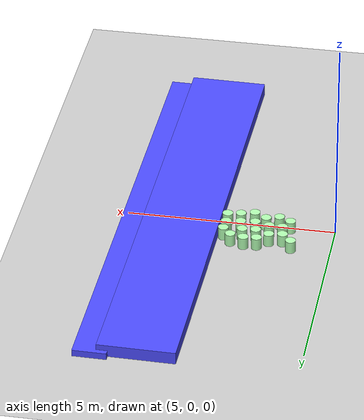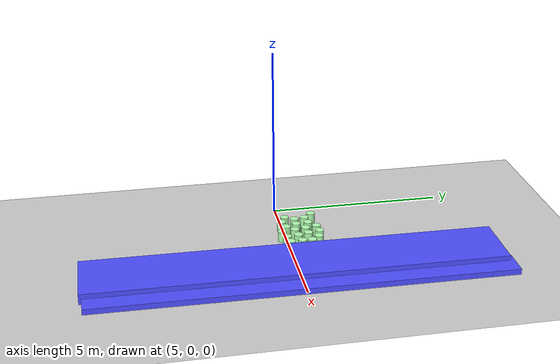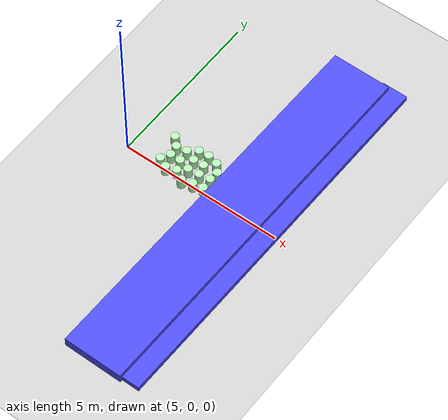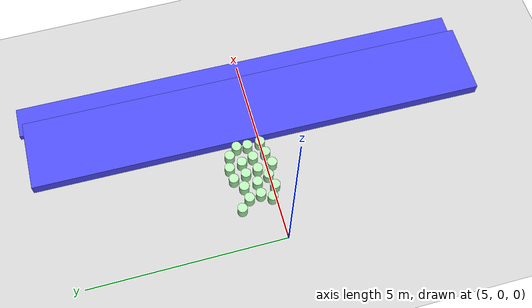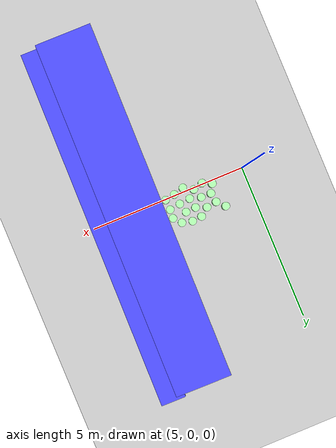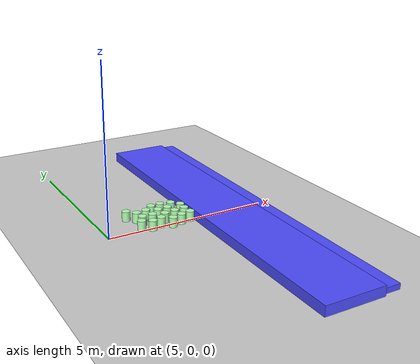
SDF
<sdf version="1.7">
 <world name="default">
  <model name="ground_plane">
   <static>1</static>
   <link name="link">
    <collision name="collision">
     <geometry><plane><normal>0 0 1</normal><size>100 100</size></plane></geometry>
     <surface><friction><ode><mu>100</mu><mu2>50</mu2></ode></friction></surface>
    </collision>
    <visual name="visual">
     <cast_shadows>0</cast_shadows>
     <geometry><plane><normal>0 0 1</normal><size>100 100</size></plane></geometry>
     <material>
      <script><uri>file://media/materials/scripts/gazebo.material</uri><name>Gazebo/Grey</name></script>
     </material>
    </visual>
   </link>
  </model>
  <model name="ban_400_80_30_clone">
   <link name="link">
    <inertial>
     <mass>1</mass>
     <inertia>
      <ixx>0.166667</ixx>
      <ixy>0</ixy>
      <ixz>0</ixz>
      <iyy>0.166667</iyy>
      <iyz>0</iyz>
      <izz>0.166667</izz>
     </inertia>
    </inertial>
    <visual name="visual">
     <geometry><box><size>11.7457 0.8 0.3</size></box></geometry>
     <material>
      <script><name>Gazebo/Grey</name><uri>file://media/materials/scripts/gazebo.material</uri></script>
      <shader type="pixel"><normal_map>__default__</normal_map></shader>
      <ambient>0.3 0.3 1 1</ambient>
      <diffuse>0.7 0.7 0.7 1</diffuse>
      <specular>0.01 0.01 0.01 1</specular>
      <emissive>0 0 0 1</emissive>
     </material>
    </visual>
    <collision name="collision">
     <geometry><box><size>11.7457 0.8 0.3</size></box></geometry>
     <surface>
      <friction>
       <ode><mu>1</mu><mu2>1</mu2><fdir1>0 0 0</fdir1><slip1>0</slip1><slip2>0</slip2></ode>
       <torsional>
        <coefficient>1</coefficient>
        <patch_radius>0</patch_radius>
        <surface_radius>0</surface_radius>
        <use_patch_radius>1</use_patch_radius>
        <ode><slip>0</slip></ode>
       </torsional>
      </friction>
      <bounce><restitution_coefficient>0</restitution_coefficient><threshold>1e+06</threshold></bounce>
      <contact>
       <collide_without_contact>0</collide_without_contact>
       <collide_without_contact_bitmask>1</collide_without_contact_bitmask>
       <collide_bitmask>1</collide_bitmask>
       <ode>
        <soft_cfm>0</soft_cfm>
        <soft_erp>0.2</soft_erp>
        <kp>1e+13</kp>
        <kd>1</kd>
        <max_vel>0.01</max_vel>
        <min_depth>0</min_depth>
       </ode>
       <bullet>
        <split_impulse>1</split_impulse>
        <split_impulse_penetration_threshold>-0.01</split_impulse_penetration_threshold>
        <soft_cfm>0</soft_cfm>
        <soft_erp>0.2</soft_erp>
        <kp>1e+13</kp>
        <kd>1</kd>
       </bullet>
      </contact>
     </surface>
    </collision>
   </link>
   <static>1</static>
   <pose>9.68721 0.016567 0 0 -0 1.55763</pose>
  </model>
  <model name="ban_400_80_30_clone_clone_clone">
   <link name="link">
    <inertial>
     <mass>1</mass>
     <inertia>
      <ixx>0.166667</ixx>
      <ixy>0</ixy>
      <ixz>0</ixz>
      <iyy>0.166667</iyy>
      <iyz>0</iyz>
      <izz>0.166667</izz>
     </inertia>
    </inertial>
    <visual name="visual">
     <geometry><box><size>11.703 1.83242 0.3</size></box></geometry>
     <material>
      <script><name>Gazebo/Grey</name><uri>file://media/materials/scripts/gazebo.material</uri></script>
      <shader type="pixel"><normal_map>__default__</normal_map></shader>
      <ambient>0.3 0.3 1 1</ambient>
      <diffuse>0.7 0.7 0.7 1</diffuse>
      <specular>0.01 0.01 0.01 1</specular>
      <emissive>0 0 0 1</emissive>
     </material>
    </visual>
    <collision name="collision">
     <geometry><box><size>11.703 1.83242 0.3</size></box></geometry>
     <surface>
      <friction>
       <ode><mu>1</mu><mu2>1</mu2><fdir1>0 0 0</fdir1><slip1>0</slip1><slip2>0</slip2></ode>
       <torsional>
        <coefficient>1</coefficient>
        <patch_radius>0</patch_radius>
        <surface_radius>0</surface_radius>
        <use_patch_radius>1</use_patch_radius>
        <ode><slip>0</slip></ode>
       </torsional>
      </friction>
      <bounce><restitution_coefficient>0</restitution_coefficient><threshold>1e+06</threshold></bounce>
      <contact>
       <collide_without_contact>0</collide_without_contact>
       <collide_without_contact_bitmask>1</collide_without_contact_bitmask>
       <collide_bitmask>1</collide_bitmask>
       <ode>
        <soft_cfm>0</soft_cfm>
        <soft_erp>0.2</soft_erp>
        <kp>1e+13</kp>
        <kd>1</kd>
        <max_vel>0.01</max_vel>
        <min_depth>0</min_depth>
       </ode>
       <bullet>
        <split_impulse>1</split_impulse>
        <split_impulse_penetration_threshold>-0.01</split_impulse_penetration_threshold>
        <soft_cfm>0</soft_cfm>
        <soft_erp>0.2</soft_erp>
        <kp>1e+13</kp>
        <kd>1</kd>
       </bullet>
      </contact>
     </surface>
    </collision>
   </link>
   <static>1</static>
   <pose>8.63322 -0.071167 0.139007 0 -0 1.55763</pose>
  </model>
  <model name="mhz_y_25_30_clone_13_clone_16">
   <link name="link">
    <inertial>
     <mass>1</mass>
     <inertia><ixx>0.145833</ixx><ixy>0</ixy><ixz>0</ixz><iyy>0.145833</iyy><iyz>0</iyz><izz>0.125</izz></inertia>
    </inertial>
    <visual name="visual">
     <geometry><cylinder><radius>0.125</radius><length>0.3</length></cylinder></geometry>
     <material>
      <script><name>Gazebo/Grey</name><uri>file://media/materials/scripts/gazebo.material</uri></script>
      <shader type="pixel"><normal_map>__default__</normal_map></shader>
      <ambient>0 1 0 0</ambient>
      <diffuse>0.7 1 0.7 1</diffuse>
      <specular>0.01 0.01 0.01 1</specular>
      <emissive>0 0 0 1</emissive>
     </material>
    </visual>
    <collision name="collision">
     <geometry><cylinder><radius>0.125</radius><length>0.3</length></cylinder></geometry>
     <surface>
      <friction>
       <ode><mu>1</mu><mu2>1</mu2><fdir1>0 0 0</fdir1><slip1>0</slip1><slip2>0</slip2></ode>
       <torsional>
        <coefficient>1</coefficient>
        <patch_radius>0</patch_radius>
        <surface_radius>0</surface_radius>
        <use_patch_radius>1</use_patch_radius>
        <ode><slip>0</slip></ode>
       </torsional>
      </friction>
      <bounce><restitution_coefficient>0</restitution_coefficient><threshold>1e+06</threshold></bounce>
      <contact>
       <collide_without_contact>0</collide_without_contact>
       <collide_without_contact_bitmask>1</collide_without_contact_bitmask>
       <collide_bitmask>1</collide_bitmask>
       <ode>
        <soft_cfm>0</soft_cfm>
        <soft_erp>0.2</soft_erp>
        <kp>1e+13</kp>
        <kd>1</kd>
        <max_vel>0.01</max_vel>
        <min_depth>0</min_depth>
       </ode>
       <bullet>
        <split_impulse>1</split_impulse>
        <split_impulse_penetration_threshold>-0.01</split_impulse_penetration_threshold>
        <soft_cfm>0</soft_cfm>
        <soft_erp>0.2</soft_erp>
        <kp>1e+13</kp>
        <kd>1</kd>
       </bullet>
      </contact>
     </surface>
    </collision>
   </link>
   <static>1</static>
   <pose>6.06003 0.106184 0.14679 0 -0 0</pose>
  </model>
  <model name="mhz_y_25_30_clone_13_clone_17">
   <link name="link">
    <inertial>
     <mass>1</mass>
     <inertia><ixx>0.145833</ixx><ixy>0</ixy><ixz>0</ixz><iyy>0.145833</iyy><iyz>0</iyz><izz>0.125</izz></inertia>
    </inertial>
    <visual name="visual">
     <geometry><cylinder><radius>0.125</radius><length>0.3</length></cylinder></geometry>
     <material>
      <script><name>Gazebo/Grey</name><uri>file://media/materials/scripts/gazebo.material</uri></script>
      <shader type="pixel"><normal_map>__default__</normal_map></shader>
      <ambient>0 1 0 0</ambient>
      <diffuse>0.7 1 0.7 1</diffuse>
      <specular>0.01 0.01 0.01 1</specular>
      <emissive>0 0 0 1</emissive>
     </material>
    </visual>
    <collision name="collision">
     <geometry><cylinder><radius>0.125</radius><length>0.3</length></cylinder></geometry>
     <surface>
      <friction>
       <ode><mu>1</mu><mu2>1</mu2><fdir1>0 0 0</fdir1><slip1>0</slip1><slip2>0</slip2></ode>
       <torsional>
        <coefficient>1</coefficient>
        <patch_radius>0</patch_radius>
        <surface_radius>0</surface_radius>
        <use_patch_radius>1</use_patch_radius>
        <ode><slip>0</slip></ode>
       </torsional>
      </friction>
      <bounce><restitution_coefficient>0</restitution_coefficient><threshold>1e+06</threshold></bounce>
      <contact>
       <collide_without_contact>0</collide_without_contact>
       <collide_without_contact_bitmask>1</collide_without_contact_bitmask>
       <collide_bitmask>1</collide_bitmask>
       <ode>
        <soft_cfm>0</soft_cfm>
        <soft_erp>0.2</soft_erp>
        <kp>1e+13</kp>
        <kd>1</kd>
        <max_vel>0.01</max_vel>
        <min_depth>0</min_depth>
       </ode>
       <bullet>
        <split_impulse>1</split_impulse>
        <split_impulse_penetration_threshold>-0.01</split_impulse_penetration_threshold>
        <soft_cfm>0</soft_cfm>
        <soft_erp>0.2</soft_erp>
        <kp>1e+13</kp>
        <kd>1</kd>
       </bullet>
      </contact>
     </surface>
    </collision>
   </link>
   <static>1</static>
   <pose>6.2125 0.368447 0.14679 0 -0 0</pose>
  </model>
  <model name="mhz_y_25_30_clone_13_clone_23">
   <link name="link">
    <inertial>
     <mass>1</mass>
     <inertia><ixx>0.145833</ixx><ixy>0</ixy><ixz>0</ixz><iyy>0.145833</iyy><iyz>0</iyz><izz>0.125</izz></inertia>
    </inertial>
    <visual name="visual">
     <geometry><cylinder><radius>0.125</radius><length>0.3</length></cylinder></geometry>
     <material>
      <script><name>Gazebo/Grey</name><uri>file://media/materials/scripts/gazebo.material</uri></script>
      <shader type="pixel"><normal_map>__default__</normal_map></shader>
      <ambient>0 1 0 0</ambient>
      <diffuse>0.7 1 0.7 1</diffuse>
      <specular>0.01 0.01 0.01 1</specular>
      <emissive>0 0 0 1</emissive>
     </material>
    </visual>
    <collision name="collision">
     <geometry><cylinder><radius>0.125</radius><length>0.3</length></cylinder></geometry>
     <surface>
      <friction>
       <ode><mu>1</mu><mu2>1</mu2><fdir1>0 0 0</fdir1><slip1>0</slip1><slip2>0</slip2></ode>
       <torsional>
        <coefficient>1</coefficient>
        <patch_radius>0</patch_radius>
        <surface_radius>0</surface_radius>
        <use_patch_radius>1</use_patch_radius>
        <ode><slip>0</slip></ode>
       </torsional>
      </friction>
      <bounce><restitution_coefficient>0</restitution_coefficient><threshold>1e+06</threshold></bounce>
      <contact>
       <collide_without_contact>0</collide_without_contact>
       <collide_without_contact_bitmask>1</collide_without_contact_bitmask>
       <collide_bitmask>1</collide_bitmask>
       <ode>
        <soft_cfm>0</soft_cfm>
        <soft_erp>0.2</soft_erp>
        <kp>1e+13</kp>
        <kd>1</kd>
        <max_vel>0.01</max_vel>
        <min_depth>0</min_depth>
       </ode>
       <bullet>
        <split_impulse>1</split_impulse>
        <split_impulse_penetration_threshold>-0.01</split_impulse_penetration_threshold>
        <soft_cfm>0</soft_cfm>
        <soft_erp>0.2</soft_erp>
        <kp>1e+13</kp>
        <kd>1</kd>
       </bullet>
      </contact>
     </surface>
    </collision>
   </link>
   <static>1</static>
   <pose>6.65576 0.052643 0.14679 0 -0 0</pose>
  </model>
  <model name="mhz_y_25_30_clone_13_clone_24">
   <link name="link">
    <inertial>
     <mass>1</mass>
     <inertia><ixx>0.145833</ixx><ixy>0</ixy><ixz>0</ixz><iyy>0.145833</iyy><iyz>0</iyz><izz>0.125</izz></inertia>
    </inertial>
    <visual name="visual">
     <geometry><cylinder><radius>0.125</radius><length>0.3</length></cylinder></geometry>
     <material>
      <script><name>Gazebo/Grey</name><uri>file://media/materials/scripts/gazebo.material</uri></script>
      <shader type="pixel"><normal_map>__default__</normal_map></shader>
      <ambient>0 1 0 0</ambient>
      <diffuse>0.7 1 0.7 1</diffuse>
      <specular>0.01 0.01 0.01 1</specular>
      <emissive>0 0 0 1</emissive>
     </material>
    </visual>
    <collision name="collision">
     <geometry><cylinder><radius>0.125</radius><length>0.3</length></cylinder></geometry>
     <surface>
      <friction>
       <ode><mu>1</mu><mu2>1</mu2><fdir1>0 0 0</fdir1><slip1>0</slip1><slip2>0</slip2></ode>
       <torsional>
        <coefficient>1</coefficient>
        <patch_radius>0</patch_radius>
        <surface_radius>0</surface_radius>
        <use_patch_radius>1</use_patch_radius>
        <ode><slip>0</slip></ode>
       </torsional>
      </friction>
      <bounce><restitution_coefficient>0</restitution_coefficient><threshold>1e+06</threshold></bounce>
      <contact>
       <collide_without_contact>0</collide_without_contact>
       <collide_without_contact_bitmask>1</collide_without_contact_bitmask>
       <collide_bitmask>1</collide_bitmask>
       <ode>
        <soft_cfm>0</soft_cfm>
        <soft_erp>0.2</soft_erp>
        <kp>1e+13</kp>
        <kd>1</kd>
        <max_vel>0.01</max_vel>
        <min_depth>0</min_depth>
       </ode>
       <bullet>
        <split_impulse>1</split_impulse>
        <split_impulse_penetration_threshold>-0.01</split_impulse_penetration_threshold>
        <soft_cfm>0</soft_cfm>
        <soft_erp>0.2</soft_erp>
        <kp>1e+13</kp>
        <kd>1</kd>
       </bullet>
      </contact>
     </surface>
    </collision>
   </link>
   <static>1</static>
   <pose>6.53418 0.364994 0.14679 0 -0 0</pose>
  </model>
  <model name="mhz_y_25_30_clone_13_clone_25">
   <link name="link">
    <inertial>
     <mass>1</mass>
     <inertia><ixx>0.145833</ixx><ixy>0</ixy><ixz>0</ixz><iyy>0.145833</iyy><iyz>0</iyz><izz>0.125</izz></inertia>
    </inertial>
    <visual name="visual">
     <geometry><cylinder><radius>0.125</radius><length>0.3</length></cylinder></geometry>
     <material>
      <script><name>Gazebo/Grey</name><uri>file://media/materials/scripts/gazebo.material</uri></script>
      <shader type="pixel"><normal_map>__default__</normal_map></shader>
      <ambient>0 1 0 0</ambient>
      <diffuse>0.7 1 0.7 1</diffuse>
      <specular>0.01 0.01 0.01 1</specular>
      <emissive>0 0 0 1</emissive>
     </material>
    </visual>
    <collision name="collision">
     <geometry><cylinder><radius>0.125</radius><length>0.3</length></cylinder></geometry>
     <surface>
      <friction>
       <ode><mu>1</mu><mu2>1</mu2><fdir1>0 0 0</fdir1><slip1>0</slip1><slip2>0</slip2></ode>
       <torsional>
        <coefficient>1</coefficient>
        <patch_radius>0</patch_radius>
        <surface_radius>0</surface_radius>
        <use_patch_radius>1</use_patch_radius>
        <ode><slip>0</slip></ode>
       </torsional>
      </friction>
      <bounce><restitution_coefficient>0</restitution_coefficient><threshold>1e+06</threshold></bounce>
      <contact>
       <collide_without_contact>0</collide_without_contact>
       <collide_without_contact_bitmask>1</collide_without_contact_bitmask>
       <collide_bitmask>1</collide_bitmask>
       <ode>
        <soft_cfm>0</soft_cfm>
        <soft_erp>0.2</soft_erp>
        <kp>1e+13</kp>
        <kd>1</kd>
        <max_vel>0.01</max_vel>
        <min_depth>0</min_depth>
       </ode>
       <bullet>
        <split_impulse>1</split_impulse>
        <split_impulse_penetration_threshold>-0.01</split_impulse_penetration_threshold>
        <soft_cfm>0</soft_cfm>
        <soft_erp>0.2</soft_erp>
        <kp>1e+13</kp>
        <kd>1</kd>
       </bullet>
      </contact>
     </surface>
    </collision>
   </link>
   <static>1</static>
   <pose>6.1648 0.673665 0.14679 0 -0 0</pose>
  </model>
  <model name="mhz_y_25_30_clone_13_clone_28">
   <link name="link">
    <inertial>
     <mass>1</mass>
     <inertia><ixx>0.145833</ixx><ixy>0</ixy><ixz>0</ixz><iyy>0.145833</iyy><iyz>0</iyz><izz>0.125</izz></inertia>
    </inertial>
    <visual name="visual">
     <geometry><cylinder><radius>0.125</radius><length>0.3</length></cylinder></geometry>
     <material>
      <script><name>Gazebo/Grey</name><uri>file://media/materials/scripts/gazebo.material</uri></script>
      <shader type="pixel"><normal_map>__default__</normal_map></shader>
      <ambient>0 1 0 0</ambient>
      <diffuse>0.7 1 0.7 1</diffuse>
      <specular>0.01 0.01 0.01 1</specular>
      <emissive>0 0 0 1</emissive>
     </material>
    </visual>
    <collision name="collision">
     <geometry><cylinder><radius>0.125</radius><length>0.3</length></cylinder></geometry>
     <surface>
      <friction>
       <ode><mu>1</mu><mu2>1</mu2><fdir1>0 0 0</fdir1><slip1>0</slip1><slip2>0</slip2></ode>
       <torsional>
        <coefficient>1</coefficient>
        <patch_radius>0</patch_radius>
        <surface_radius>0</surface_radius>
        <use_patch_radius>1</use_patch_radius>
        <ode><slip>0</slip></ode>
       </torsional>
      </friction>
      <bounce><restitution_coefficient>0</restitution_coefficient><threshold>1e+06</threshold></bounce>
      <contact>
       <collide_without_contact>0</collide_without_contact>
       <collide_without_contact_bitmask>1</collide_without_contact_bitmask>
       <collide_bitmask>1</collide_bitmask>
       <ode>
        <soft_cfm>0</soft_cfm>
        <soft_erp>0.2</soft_erp>
        <kp>1e+13</kp>
        <kd>1</kd>
        <max_vel>0.01</max_vel>
        <min_depth>0</min_depth>
       </ode>
       <bullet>
        <split_impulse>1</split_impulse>
        <split_impulse_penetration_threshold>-0.01</split_impulse_penetration_threshold>
        <soft_cfm>0</soft_cfm>
        <soft_erp>0.2</soft_erp>
        <kp>1e+13</kp>
        <kd>1</kd>
       </bullet>
      </contact>
     </surface>
    </collision>
   </link>
   <static>1</static>
   <pose>6.49026 0.719298 0.14679 0 -0 0</pose>
  </model>
  <model name="mhz_y_25_30_clone_13_clone_29">
   <link name="link">
    <inertial>
     <mass>1</mass>
     <inertia><ixx>0.145833</ixx><ixy>0</ixy><ixz>0</ixz><iyy>0.145833</iyy><iyz>0</iyz><izz>0.125</izz></inertia>
    </inertial>
    <visual name="visual">
     <geometry><cylinder><radius>0.125</radius><length>0.3</length></cylinder></geometry>
     <material>
      <script><name>Gazebo/Grey</name><uri>file://media/materials/scripts/gazebo.material</uri></script>
      <shader type="pixel"><normal_map>__default__</normal_map></shader>
      <ambient>0 1 0 0</ambient>
      <diffuse>0.7 1 0.7 1</diffuse>
      <specular>0.01 0.01 0.01 1</specular>
      <emissive>0 0 0 1</emissive>
     </material>
    </visual>
    <collision name="collision">
     <geometry><cylinder><radius>0.125</radius><length>0.3</length></cylinder></geometry>
     <surface>
      <friction>
       <ode><mu>1</mu><mu2>1</mu2><fdir1>0 0 0</fdir1><slip1>0</slip1><slip2>0</slip2></ode>
       <torsional>
        <coefficient>1</coefficient>
        <patch_radius>0</patch_radius>
        <surface_radius>0</surface_radius>
        <use_patch_radius>1</use_patch_radius>
        <ode><slip>0</slip></ode>
       </torsional>
      </friction>
      <bounce><restitution_coefficient>0</restitution_coefficient><threshold>1e+06</threshold></bounce>
      <contact>
       <collide_without_contact>0</collide_without_contact>
       <collide_without_contact_bitmask>1</collide_without_contact_bitmask>
       <collide_bitmask>1</collide_bitmask>
       <ode>
        <soft_cfm>0</soft_cfm>
        <soft_erp>0.2</soft_erp>
        <kp>1e+13</kp>
        <kd>1</kd>
        <max_vel>0.01</max_vel>
        <min_depth>0</min_depth>
       </ode>
       <bullet>
        <split_impulse>1</split_impulse>
        <split_impulse_penetration_threshold>-0.01</split_impulse_penetration_threshold>
        <soft_cfm>0</soft_cfm>
        <soft_erp>0.2</soft_erp>
        <kp>1e+13</kp>
        <kd>1</kd>
       </bullet>
      </contact>
     </surface>
    </collision>
   </link>
   <static>1</static>
   <pose>6.82115 0.589079 0.14679 0 -0 0</pose>
  </model>
  <model name="mhz_y_25_30_clone_13_clone_30">
   <link name="link">
    <inertial>
     <mass>1</mass>
     <inertia><ixx>0.145833</ixx><ixy>0</ixy><ixz>0</ixz><iyy>0.145833</iyy><iyz>0</iyz><izz>0.125</izz></inertia>
    </inertial>
    <visual name="visual">
     <geometry><cylinder><radius>0.125</radius><length>0.3</length></cylinder></geometry>
     <material>
      <script><name>Gazebo/Grey</name><uri>file://media/materials/scripts/gazebo.material</uri></script>
      <shader type="pixel"><normal_map>__default__</normal_map></shader>
      <ambient>0 1 0 0</ambient>
      <diffuse>0.7 1 0.7 1</diffuse>
      <specular>0.01 0.01 0.01 1</specular>
      <emissive>0 0 0 1</emissive>
     </material>
    </visual>
    <collision name="collision">
     <geometry><cylinder><radius>0.125</radius><length>0.3</length></cylinder></geometry>
     <surface>
      <friction>
       <ode><mu>1</mu><mu2>1</mu2><fdir1>0 0 0</fdir1><slip1>0</slip1><slip2>0</slip2></ode>
       <torsional>
        <coefficient>1</coefficient>
        <patch_radius>0</patch_radius>
        <surface_radius>0</surface_radius>
        <use_patch_radius>1</use_patch_radius>
        <ode><slip>0</slip></ode>
       </torsional>
      </friction>
      <bounce><restitution_coefficient>0</restitution_coefficient><threshold>1e+06</threshold></bounce>
      <contact>
       <collide_without_contact>0</collide_without_contact>
       <collide_without_contact_bitmask>1</collide_without_contact_bitmask>
       <collide_bitmask>1</collide_bitmask>
       <ode>
        <soft_cfm>0</soft_cfm>
        <soft_erp>0.2</soft_erp>
        <kp>1e+13</kp>
        <kd>1</kd>
        <max_vel>0.01</max_vel>
        <min_depth>0</min_depth>
       </ode>
       <bullet>
        <split_impulse>1</split_impulse>
        <split_impulse_penetration_threshold>-0.01</split_impulse_penetration_threshold>
        <soft_cfm>0</soft_cfm>
        <soft_erp>0.2</soft_erp>
        <kp>1e+13</kp>
        <kd>1</kd>
       </bullet>
      </contact>
     </surface>
    </collision>
   </link>
   <static>1</static>
   <pose>6.88396 0.264287 0.14679 0 -0 0</pose>
  </model>
  <model name="mhz_y_25_30_clone_13_clone_31">
   <link name="link">
    <inertial>
     <mass>1</mass>
     <inertia><ixx>0.145833</ixx><ixy>0</ixy><ixz>0</ixz><iyy>0.145833</iyy><iyz>0</iyz><izz>0.125</izz></inertia>
    </inertial>
    <visual name="visual">
     <geometry><cylinder><radius>0.125</radius><length>0.3</length></cylinder></geometry>
     <material>
      <script><name>Gazebo/Grey</name><uri>file://media/materials/scripts/gazebo.material</uri></script>
      <shader type="pixel"><normal_map>__default__</normal_map></shader>
      <ambient>0 1 0 0</ambient>
      <diffuse>0.7 1 0.7 1</diffuse>
      <specular>0.01 0.01 0.01 1</specular>
      <emissive>0 0 0 1</emissive>
     </material>
    </visual>
    <collision name="collision">
     <geometry><cylinder><radius>0.125</radius><length>0.3</length></cylinder></geometry>
     <surface>
      <friction>
       <ode><mu>1</mu><mu2>1</mu2><fdir1>0 0 0</fdir1><slip1>0</slip1><slip2>0</slip2></ode>
       <torsional>
        <coefficient>1</coefficient>
        <patch_radius>0</patch_radius>
        <surface_radius>0</surface_radius>
        <use_patch_radius>1</use_patch_radius>
        <ode><slip>0</slip></ode>
       </torsional>
      </friction>
      <bounce><restitution_coefficient>0</restitution_coefficient><threshold>1e+06</threshold></bounce>
      <contact>
       <collide_without_contact>0</collide_without_contact>
       <collide_without_contact_bitmask>1</collide_without_contact_bitmask>
       <collide_bitmask>1</collide_bitmask>
       <ode>
        <soft_cfm>0</soft_cfm>
        <soft_erp>0.2</soft_erp>
        <kp>1e+13</kp>
        <kd>1</kd>
        <max_vel>0.01</max_vel>
        <min_depth>0</min_depth>
       </ode>
       <bullet>
        <split_impulse>1</split_impulse>
        <split_impulse_penetration_threshold>-0.01</split_impulse_penetration_threshold>
        <soft_cfm>0</soft_cfm>
        <soft_erp>0.2</soft_erp>
        <kp>1e+13</kp>
        <kd>1</kd>
       </bullet>
      </contact>
     </surface>
    </collision>
   </link>
   <static>1</static>
   <pose>6.95073 -0.123259 0.14679 0 -0 0</pose>
  </model>
  <model name="mhz_y_25_30_clone_13_clone_35">
   <link name="link">
    <inertial>
     <mass>1</mass>
     <inertia><ixx>0.145833</ixx><ixy>0</ixy><ixz>0</ixz><iyy>0.145833</iyy><iyz>0</iyz><izz>0.125</izz></inertia>
    </inertial>
    <visual name="visual">
     <geometry><cylinder><radius>0.125</radius><length>0.3</length></cylinder></geometry>
     <material>
      <script><name>Gazebo/Grey</name><uri>file://media/materials/scripts/gazebo.material</uri></script>
      <shader type="pixel"><normal_map>__default__</normal_map></shader>
      <ambient>0 1 0 0</ambient>
      <diffuse>0.7 1 0.7 1</diffuse>
      <specular>0.01 0.01 0.01 1</specular>
      <emissive>0 0 0 1</emissive>
     </material>
    </visual>
    <collision name="collision">
     <geometry><cylinder><radius>0.125</radius><length>0.3</length></cylinder></geometry>
     <surface>
      <friction>
       <ode><mu>1</mu><mu2>1</mu2><fdir1>0 0 0</fdir1><slip1>0</slip1><slip2>0</slip2></ode>
       <torsional>
        <coefficient>1</coefficient>
        <patch_radius>0</patch_radius>
        <surface_radius>0</surface_radius>
        <use_patch_radius>1</use_patch_radius>
        <ode><slip>0</slip></ode>
       </torsional>
      </friction>
      <bounce><restitution_coefficient>0</restitution_coefficient><threshold>1e+06</threshold></bounce>
      <contact>
       <collide_without_contact>0</collide_without_contact>
       <collide_without_contact_bitmask>1</collide_without_contact_bitmask>
       <collide_bitmask>1</collide_bitmask>
       <ode>
        <soft_cfm>0</soft_cfm>
        <soft_erp>0.2</soft_erp>
        <kp>1e+13</kp>
        <kd>1</kd>
        <max_vel>0.01</max_vel>
        <min_depth>0</min_depth>
       </ode>
       <bullet>
        <split_impulse>1</split_impulse>
        <split_impulse_penetration_threshold>-0.01</split_impulse_penetration_threshold>
        <soft_cfm>0</soft_cfm>
        <soft_erp>0.2</soft_erp>
        <kp>1e+13</kp>
        <kd>1</kd>
       </bullet>
      </contact>
     </surface>
    </collision>
   </link>
   <static>1</static>
   <pose>7.22805 0.299541 0.14679 0 -0 0</pose>
  </model>
  <model name="mhz_y_25_30_clone_13_clone_36">
   <link name="link">
    <inertial>
     <mass>1</mass>
     <inertia><ixx>0.145833</ixx><ixy>0</ixy><ixz>0</ixz><iyy>0.145833</iyy><iyz>0</iyz><izz>0.125</izz></inertia>
    </inertial>
    <visual name="visual">
     <geometry><cylinder><radius>0.125</radius><length>0.3</length></cylinder></geometry>
     <material>
      <script><name>Gazebo/Grey</name><uri>file://media/materials/scripts/gazebo.material</uri></script>
      <shader type="pixel"><normal_map>__default__</normal_map></shader>
      <ambient>0 1 0 0</ambient>
      <diffuse>0.7 1 0.7 1</diffuse>
      <specular>0.01 0.01 0.01 1</specular>
      <emissive>0 0 0 1</emissive>
     </material>
    </visual>
    <collision name="collision">
     <geometry><cylinder><radius>0.125</radius><length>0.3</length></cylinder></geometry>
     <surface>
      <friction>
       <ode><mu>1</mu><mu2>1</mu2><fdir1>0 0 0</fdir1><slip1>0</slip1><slip2>0</slip2></ode>
       <torsional>
        <coefficient>1</coefficient>
        <patch_radius>0</patch_radius>
        <surface_radius>0</surface_radius>
        <use_patch_radius>1</use_patch_radius>
        <ode><slip>0</slip></ode>
       </torsional>
      </friction>
      <bounce><restitution_coefficient>0</restitution_coefficient><threshold>1e+06</threshold></bounce>
      <contact>
       <collide_without_contact>0</collide_without_contact>
       <collide_without_contact_bitmask>1</collide_without_contact_bitmask>
       <collide_bitmask>1</collide_bitmask>
       <ode>
        <soft_cfm>0</soft_cfm>
        <soft_erp>0.2</soft_erp>
        <kp>1e+13</kp>
        <kd>1</kd>
        <max_vel>0.01</max_vel>
        <min_depth>0</min_depth>
       </ode>
       <bullet>
        <split_impulse>1</split_impulse>
        <split_impulse_penetration_threshold>-0.01</split_impulse_penetration_threshold>
        <soft_cfm>0</soft_cfm>
        <soft_erp>0.2</soft_erp>
        <kp>1e+13</kp>
        <kd>1</kd>
       </bullet>
      </contact>
     </surface>
    </collision>
   </link>
   <static>1</static>
   <pose>7.14458 0.606506 0.14679 0 -0 0</pose>
  </model>
  <model name="mhz_y_25_30_clone_13_clone_37">
   <link name="link">
    <inertial>
     <mass>1</mass>
     <inertia><ixx>0.145833</ixx><ixy>0</ixy><ixz>0</ixz><iyy>0.145833</iyy><iyz>0</iyz><izz>0.125</izz></inertia>
    </inertial>
    <visual name="visual">
     <geometry><cylinder><radius>0.125</radius><length>0.3</length></cylinder></geometry>
     <material>
      <script><name>Gazebo/Grey</name><uri>file://media/materials/scripts/gazebo.material</uri></script>
      <shader type="pixel"><normal_map>__default__</normal_map></shader>
      <ambient>0 1 0 0</ambient>
      <diffuse>0.7 1 0.7 1</diffuse>
      <specular>0.01 0.01 0.01 1</specular>
      <emissive>0 0 0 1</emissive>
     </material>
    </visual>
    <collision name="collision">
     <geometry><cylinder><radius>0.125</radius><length>0.3</length></cylinder></geometry>
     <surface>
      <friction>
       <ode><mu>1</mu><mu2>1</mu2><fdir1>0 0 0</fdir1><slip1>0</slip1><slip2>0</slip2></ode>
       <torsional>
        <coefficient>1</coefficient>
        <patch_radius>0</patch_radius>
        <surface_radius>0</surface_radius>
        <use_patch_radius>1</use_patch_radius>
        <ode><slip>0</slip></ode>
       </torsional>
      </friction>
      <bounce><restitution_coefficient>0</restitution_coefficient><threshold>1e+06</threshold></bounce>
      <contact>
       <collide_without_contact>0</collide_without_contact>
       <collide_without_contact_bitmask>1</collide_without_contact_bitmask>
       <collide_bitmask>1</collide_bitmask>
       <ode>
        <soft_cfm>0</soft_cfm>
        <soft_erp>0.2</soft_erp>
        <kp>1e+13</kp>
        <kd>1</kd>
        <max_vel>0.01</max_vel>
        <min_depth>0</min_depth>
       </ode>
       <bullet>
        <split_impulse>1</split_impulse>
        <split_impulse_penetration_threshold>-0.01</split_impulse_penetration_threshold>
        <soft_cfm>0</soft_cfm>
        <soft_erp>0.2</soft_erp>
        <kp>1e+13</kp>
        <kd>1</kd>
       </bullet>
      </contact>
     </surface>
    </collision>
   </link>
   <static>1</static>
   <pose>7.27409 -0.036417 0.14679 0 -0 0</pose>
  </model>
  <model name="mhz_y_25_30_clone_13_clone_38">
   <link name="link">
    <inertial>
     <mass>1</mass>
     <inertia><ixx>0.145833</ixx><ixy>0</ixy><ixz>0</ixz><iyy>0.145833</iyy><iyz>0</iyz><izz>0.125</izz></inertia>
    </inertial>
    <visual name="visual">
     <geometry><cylinder><radius>0.125</radius><length>0.3</length></cylinder></geometry>
     <material>
      <script><name>Gazebo/Grey</name><uri>file://media/materials/scripts/gazebo.material</uri></script>
      <shader type="pixel"><normal_map>__default__</normal_map></shader>
      <ambient>0 1 0 0</ambient>
      <diffuse>0.7 1 0.7 1</diffuse>
      <specular>0.01 0.01 0.01 1</specular>
      <emissive>0 0 0 1</emissive>
     </material>
    </visual>
    <collision name="collision">
     <geometry><cylinder><radius>0.125</radius><length>0.3</length></cylinder></geometry>
     <surface>
      <friction>
       <ode><mu>1</mu><mu2>1</mu2><fdir1>0 0 0</fdir1><slip1>0</slip1><slip2>0</slip2></ode>
       <torsional>
        <coefficient>1</coefficient>
        <patch_radius>0</patch_radius>
        <surface_radius>0</surface_radius>
        <use_patch_radius>1</use_patch_radius>
        <ode><slip>0</slip></ode>
       </torsional>
      </friction>
      <bounce><restitution_coefficient>0</restitution_coefficient><threshold>1e+06</threshold></bounce>
      <contact>
       <collide_without_contact>0</collide_without_contact>
       <collide_without_contact_bitmask>1</collide_without_contact_bitmask>
       <collide_bitmask>1</collide_bitmask>
       <ode>
        <soft_cfm>0</soft_cfm>
        <soft_erp>0.2</soft_erp>
        <kp>1e+13</kp>
        <kd>1</kd>
        <max_vel>0.01</max_vel>
        <min_depth>0</min_depth>
       </ode>
       <bullet>
        <split_impulse>1</split_impulse>
        <split_impulse_penetration_threshold>-0.01</split_impulse_penetration_threshold>
        <soft_cfm>0</soft_cfm>
        <soft_erp>0.2</soft_erp>
        <kp>1e+13</kp>
        <kd>1</kd>
       </bullet>
      </contact>
     </surface>
    </collision>
   </link>
   <static>1</static>
   <pose>7.56956 0.348571 0.14679 0 -0 0</pose>
  </model>
  <model name="mhz_y_25_30_clone_13_clone_42">
   <link name="link">
    <inertial>
     <mass>1</mass>
     <inertia><ixx>0.145833</ixx><ixy>0</ixy><ixz>0</ixz><iyy>0.145833</iyy><iyz>0</iyz><izz>0.125</izz></inertia>
    </inertial>
    <visual name="visual">
     <geometry><cylinder><radius>0.125</radius><length>0.3</length></cylinder></geometry>
     <material>
      <script><name>Gazebo/Grey</name><uri>file://media/materials/scripts/gazebo.material</uri></script>
      <shader type="pixel"><normal_map>__default__</normal_map></shader>
      <ambient>0 1 0 0</ambient>
      <diffuse>0.7 1 0.7 1</diffuse>
      <specular>0.01 0.01 0.01 1</specular>
      <emissive>0 0 0 1</emissive>
     </material>
    </visual>
    <collision name="collision">
     <geometry><cylinder><radius>0.125</radius><length>0.3</length></cylinder></geometry>
     <surface>
      <friction>
       <ode><mu>1</mu><mu2>1</mu2><fdir1>0 0 0</fdir1><slip1>0</slip1><slip2>0</slip2></ode>
       <torsional>
        <coefficient>1</coefficient>
        <patch_radius>0</patch_radius>
        <surface_radius>0</surface_radius>
        <use_patch_radius>1</use_patch_radius>
        <ode><slip>0</slip></ode>
       </torsional>
      </friction>
      <bounce><restitution_coefficient>0</restitution_coefficient><threshold>1e+06</threshold></bounce>
      <contact>
       <collide_without_contact>0</collide_without_contact>
       <collide_without_contact_bitmask>1</collide_without_contact_bitmask>
       <collide_bitmask>1</collide_bitmask>
       <ode>
        <soft_cfm>0</soft_cfm>
        <soft_erp>0.2</soft_erp>
        <kp>1e+13</kp>
        <kd>1</kd>
        <max_vel>0.01</max_vel>
        <min_depth>0</min_depth>
       </ode>
       <bullet>
        <split_impulse>1</split_impulse>
        <split_impulse_penetration_threshold>-0.01</split_impulse_penetration_threshold>
        <soft_cfm>0</soft_cfm>
        <soft_erp>0.2</soft_erp>
        <kp>1e+13</kp>
        <kd>1</kd>
       </bullet>
      </contact>
     </surface>
    </collision>
   </link>
   <static>1</static>
   <pose>7.06539 0.94339 0.14679 0 -0 0</pose>
  </model>
  <model name="mhz_y_25_30_clone_13_clone_49">
   <link name="link">
    <inertial>
     <mass>1</mass>
     <inertia><ixx>0.145833</ixx><ixy>0</ixy><ixz>0</ixz><iyy>0.145833</iyy><iyz>0</iyz><izz>0.125</izz></inertia>
    </inertial>
    <visual name="visual">
     <geometry><cylinder><radius>0.125</radius><length>0.3</length></cylinder></geometry>
     <material>
      <script><name>Gazebo/Grey</name><uri>file://media/materials/scripts/gazebo.material</uri></script>
      <shader type="pixel"><normal_map>__default__</normal_map></shader>
      <ambient>0 1 0 0</ambient>
      <diffuse>0.7 1 0.7 1</diffuse>
      <specular>0.01 0.01 0.01 1</specular>
      <emissive>0 0 0 1</emissive>
     </material>
    </visual>
    <collision name="collision">
     <geometry><cylinder><radius>0.125</radius><length>0.3</length></cylinder></geometry>
     <surface>
      <friction>
       <ode><mu>1</mu><mu2>1</mu2><fdir1>0 0 0</fdir1><slip1>0</slip1><slip2>0</slip2></ode>
       <torsional>
        <coefficient>1</coefficient>
        <patch_radius>0</patch_radius>
        <surface_radius>0</surface_radius>
        <use_patch_radius>1</use_patch_radius>
        <ode><slip>0</slip></ode>
       </torsional>
      </friction>
      <bounce><restitution_coefficient>0</restitution_coefficient><threshold>1e+06</threshold></bounce>
      <contact>
       <collide_without_contact>0</collide_without_contact>
       <collide_without_contact_bitmask>1</collide_without_contact_bitmask>
       <collide_bitmask>1</collide_bitmask>
       <ode>
        <soft_cfm>0</soft_cfm>
        <soft_erp>0.2</soft_erp>
        <kp>1e+13</kp>
        <kd>1</kd>
        <max_vel>0.01</max_vel>
        <min_depth>0</min_depth>
       </ode>
       <bullet>
        <split_impulse>1</split_impulse>
        <split_impulse_penetration_threshold>-0.01</split_impulse_penetration_threshold>
        <soft_cfm>0</soft_cfm>
        <soft_erp>0.2</soft_erp>
        <kp>1e+13</kp>
        <kd>1</kd>
       </bullet>
      </contact>
     </surface>
    </collision>
   </link>
   <static>1</static>
   <pose>5.93984 0.910292 0.14679 0 -0 0</pose>
  </model>
  <model name="mhz_y_25_30_clone_13_clone_51">
   <link name="link">
    <inertial>
     <mass>1</mass>
     <inertia><ixx>0.145833</ixx><ixy>0</ixy><ixz>0</ixz><iyy>0.145833</iyy><iyz>0</iyz><izz>0.125</izz></inertia>
    </inertial>
    <visual name="visual">
     <geometry><cylinder><radius>0.125</radius><length>0.3</length></cylinder></geometry>
     <material>
      <script><name>Gazebo/Grey</name><uri>file://media/materials/scripts/gazebo.material</uri></script>
      <shader type="pixel"><normal_map>__default__</normal_map></shader>
      <ambient>0 1 0 0</ambient>
      <diffuse>0.7 1 0.7 1</diffuse>
      <specular>0.01 0.01 0.01 1</specular>
      <emissive>0 0 0 1</emissive>
     </material>
    </visual>
    <collision name="collision">
     <geometry><cylinder><radius>0.125</radius><length>0.3</length></cylinder></geometry>
     <surface>
      <friction>
       <ode><mu>1</mu><mu2>1</mu2><fdir1>0 0 0</fdir1><slip1>0</slip1><slip2>0</slip2></ode>
       <torsional>
        <coefficient>1</coefficient>
        <patch_radius>0</patch_radius>
        <surface_radius>0</surface_radius>
        <use_patch_radius>1</use_patch_radius>
        <ode><slip>0</slip></ode>
       </torsional>
      </friction>
      <bounce><restitution_coefficient>0</restitution_coefficient><threshold>1e+06</threshold></bounce>
      <contact>
       <collide_without_contact>0</collide_without_contact>
       <collide_without_contact_bitmask>1</collide_without_contact_bitmask>
       <collide_bitmask>1</collide_bitmask>
       <ode>
        <soft_cfm>0</soft_cfm>
        <soft_erp>0.2</soft_erp>
        <kp>1e+13</kp>
        <kd>1</kd>
        <max_vel>0.01</max_vel>
        <min_depth>0</min_depth>
       </ode>
       <bullet>
        <split_impulse>1</split_impulse>
        <split_impulse_penetration_threshold>-0.01</split_impulse_penetration_threshold>
        <soft_cfm>0</soft_cfm>
        <soft_erp>0.2</soft_erp>
        <kp>1e+13</kp>
        <kd>1</kd>
       </bullet>
      </contact>
     </surface>
    </collision>
   </link>
   <static>1</static>
   <pose>7.59222 0.62963 0.14679 0 -0 0</pose>
  </model>
  <model name="mhz_y_25_30_clone_13_clone_52">
   <link name="link">
    <inertial>
     <mass>1</mass>
     <inertia><ixx>0.145833</ixx><ixy>0</ixy><ixz>0</ixz><iyy>0.145833</iyy><iyz>0</iyz><izz>0.125</izz></inertia>
    </inertial>
    <visual name="visual">
     <geometry><cylinder><radius>0.125</radius><length>0.3</length></cylinder></geometry>
     <material>
      <script><name>Gazebo/Grey</name><uri>file://media/materials/scripts/gazebo.material</uri></script>
      <shader type="pixel"><normal_map>__default__</normal_map></shader>
      <ambient>0 1 0 0</ambient>
      <diffuse>0.7 1 0.7 1</diffuse>
      <specular>0.01 0.01 0.01 1</specular>
      <emissive>0 0 0 1</emissive>
     </material>
    </visual>
    <collision name="collision">
     <geometry><cylinder><radius>0.125</radius><length>0.3</length></cylinder></geometry>
     <surface>
      <friction>
       <ode><mu>1</mu><mu2>1</mu2><fdir1>0 0 0</fdir1><slip1>0</slip1><slip2>0</slip2></ode>
       <torsional>
        <coefficient>1</coefficient>
        <patch_radius>0</patch_radius>
        <surface_radius>0</surface_radius>
        <use_patch_radius>1</use_patch_radius>
        <ode><slip>0</slip></ode>
       </torsional>
      </friction>
      <bounce><restitution_coefficient>0</restitution_coefficient><threshold>1e+06</threshold></bounce>
      <contact>
       <collide_without_contact>0</collide_without_contact>
       <collide_without_contact_bitmask>1</collide_without_contact_bitmask>
       <collide_bitmask>1</collide_bitmask>
       <ode>
        <soft_cfm>0</soft_cfm>
        <soft_erp>0.2</soft_erp>
        <kp>1e+13</kp>
        <kd>1</kd>
        <max_vel>0.01</max_vel>
        <min_depth>0</min_depth>
       </ode>
       <bullet>
        <split_impulse>1</split_impulse>
        <split_impulse_penetration_threshold>-0.01</split_impulse_penetration_threshold>
        <soft_cfm>0</soft_cfm>
        <soft_erp>0.2</soft_erp>
        <kp>1e+13</kp>
        <kd>1</kd>
       </bullet>
      </contact>
     </surface>
    </collision>
   </link>
   <static>1</static>
   <pose>7.38959 0.861215 0.14679 0 -0 0</pose>
  </model>
  <model name="mhz_y_25_30_clone_13_clone_54">
   <link name="link">
    <inertial>
     <mass>1</mass>
     <inertia><ixx>0.145833</ixx><ixy>0</ixy><ixz>0</ixz><iyy>0.145833</iyy><iyz>0</iyz><izz>0.125</izz></inertia>
    </inertial>
    <visual name="visual">
     <geometry><cylinder><radius>0.125</radius><length>0.3</length></cylinder></geometry>
     <material>
      <script><name>Gazebo/Grey</name><uri>file://media/materials/scripts/gazebo.material</uri></script>
      <shader type="pixel"><normal_map>__default__</normal_map></shader>
      <ambient>0 1 0 0</ambient>
      <diffuse>0.7 1 0.7 1</diffuse>
      <specular>0.01 0.01 0.01 1</specular>
      <emissive>0 0 0 1</emissive>
     </material>
    </visual>
    <collision name="collision">
     <geometry><cylinder><radius>0.125</radius><length>0.3</length></cylinder></geometry>
     <surface>
      <friction>
       <ode><mu>1</mu><mu2>1</mu2><fdir1>0 0 0</fdir1><slip1>0</slip1><slip2>0</slip2></ode>
       <torsional>
        <coefficient>1</coefficient>
        <patch_radius>0</patch_radius>
        <surface_radius>0</surface_radius>
        <use_patch_radius>1</use_patch_radius>
        <ode><slip>0</slip></ode>
       </torsional>
      </friction>
      <bounce><restitution_coefficient>0</restitution_coefficient><threshold>1e+06</threshold></bounce>
      <contact>
       <collide_without_contact>0</collide_without_contact>
       <collide_without_contact_bitmask>1</collide_without_contact_bitmask>
       <collide_bitmask>1</collide_bitmask>
       <ode>
        <soft_cfm>0</soft_cfm>
        <soft_erp>0.2</soft_erp>
        <kp>1e+13</kp>
        <kd>1</kd>
        <max_vel>0.01</max_vel>
        <min_depth>0</min_depth>
       </ode>
       <bullet>
        <split_impulse>1</split_impulse>
        <split_impulse_penetration_threshold>-0.01</split_impulse_penetration_threshold>
        <soft_cfm>0</soft_cfm>
        <soft_erp>0.2</soft_erp>
        <kp>1e+13</kp>
        <kd>1</kd>
       </bullet>
      </contact>
     </surface>
    </collision>
   </link>
   <static>1</static>
   <pose>6.75308 0.916862 0.14679 0 -0 0</pose>
  </model>
  <model name="mhz_y_25_30_clone_13_clone_55">
   <link name="link">
    <inertial>
     <mass>1</mass>
     <inertia><ixx>0.145833</ixx><ixy>0</ixy><ixz>0</ixz><iyy>0.145833</iyy><iyz>0</iyz><izz>0.125</izz></inertia>
    </inertial>
    <visual name="visual">
     <geometry><cylinder><radius>0.125</radius><length>0.3</length></cylinder></geometry>
     <material>
      <script><name>Gazebo/Grey</name><uri>file://media/materials/scripts/gazebo.material</uri></script>
      <shader type="pixel"><normal_map>__default__</normal_map></shader>
      <ambient>0 1 0 0</ambient>
      <diffuse>0.7 1 0.7 1</diffuse>
      <specular>0.01 0.01 0.01 1</specular>
      <emissive>0 0 0 1</emissive>
     </material>
    </visual>
    <collision name="collision">
     <geometry><cylinder><radius>0.125</radius><length>0.3</length></cylinder></geometry>
     <surface>
      <friction>
       <ode><mu>1</mu><mu2>1</mu2><fdir1>0 0 0</fdir1><slip1>0</slip1><slip2>0</slip2></ode>
       <torsional>
        <coefficient>1</coefficient>
        <patch_radius>0</patch_radius>
        <surface_radius>0</surface_radius>
        <use_patch_radius>1</use_patch_radius>
        <ode><slip>0</slip></ode>
       </torsional>
      </friction>
      <bounce><restitution_coefficient>0</restitution_coefficient><threshold>1e+06</threshold></bounce>
      <contact>
       <collide_without_contact>0</collide_without_contact>
       <collide_without_contact_bitmask>1</collide_without_contact_bitmask>
       <collide_bitmask>1</collide_bitmask>
       <ode>
        <soft_cfm>0</soft_cfm>
        <soft_erp>0.2</soft_erp>
        <kp>1e+13</kp>
        <kd>1</kd>
        <max_vel>0.01</max_vel>
        <min_depth>0</min_depth>
       </ode>
       <bullet>
        <split_impulse>1</split_impulse>
        <split_impulse_penetration_threshold>-0.01</split_impulse_penetration_threshold>
        <soft_cfm>0</soft_cfm>
        <soft_erp>0.2</soft_erp>
        <kp>1e+13</kp>
        <kd>1</kd>
       </bullet>
      </contact>
     </surface>
    </collision>
   </link>
   <static>1</static>
   <pose>7.5854 0.018517 0.14679 0 -0 0</pose>
  </model>
  <model name="mhz_y_25_30_clone_13_clone_17_clone">
   <link name="link">
    <inertial>
     <mass>1</mass>
     <inertia><ixx>0.145833</ixx><ixy>0</ixy><ixz>0</ixz><iyy>0.145833</iyy><iyz>0</iyz><izz>0.125</izz></inertia>
    </inertial>
    <visual name="visual">
     <geometry><cylinder><radius>0.125</radius><length>0.3</length></cylinder></geometry>
     <material>
      <script><name>Gazebo/Grey</name><uri>file://media/materials/scripts/gazebo.material</uri></script>
      <shader type="pixel"><normal_map>__default__</normal_map></shader>
      <ambient>0 1 0 0</ambient>
      <diffuse>0.7 1 0.7 1</diffuse>
      <specular>0.01 0.01 0.01 1</specular>
      <emissive>0 0 0 1</emissive>
     </material>
    </visual>
    <collision name="collision">
     <geometry><cylinder><radius>0.125</radius><length>0.3</length></cylinder></geometry>
     <surface>
      <friction>
       <ode><mu>1</mu><mu2>1</mu2><fdir1>0 0 0</fdir1><slip1>0</slip1><slip2>0</slip2></ode>
       <torsional>
        <coefficient>1</coefficient>
        <patch_radius>0</patch_radius>
        <surface_radius>0</surface_radius>
        <use_patch_radius>1</use_patch_radius>
        <ode><slip>0</slip></ode>
       </torsional>
      </friction>
      <bounce><restitution_coefficient>0</restitution_coefficient><threshold>1e+06</threshold></bounce>
      <contact>
       <collide_without_contact>0</collide_without_contact>
       <collide_without_contact_bitmask>1</collide_without_contact_bitmask>
       <collide_bitmask>1</collide_bitmask>
       <ode>
        <soft_cfm>0</soft_cfm>
        <soft_erp>0.2</soft_erp>
        <kp>1e+13</kp>
        <kd>1</kd>
        <max_vel>0.01</max_vel>
        <min_depth>0</min_depth>
       </ode>
       <bullet>
        <split_impulse>1</split_impulse>
        <split_impulse_penetration_threshold>-0.01</split_impulse_penetration_threshold>
        <soft_cfm>0</soft_cfm>
        <soft_erp>0.2</soft_erp>
        <kp>1e+13</kp>
        <kd>1</kd>
       </bullet>
      </contact>
     </surface>
    </collision>
   </link>
   <static>1</static>
   <pose>6.34463 -0.032543 0.14679 0 -0 0</pose>
  </model>
 </world>
</sdf>
